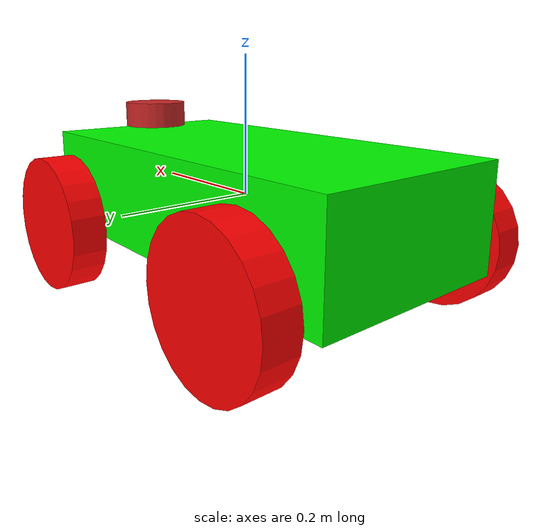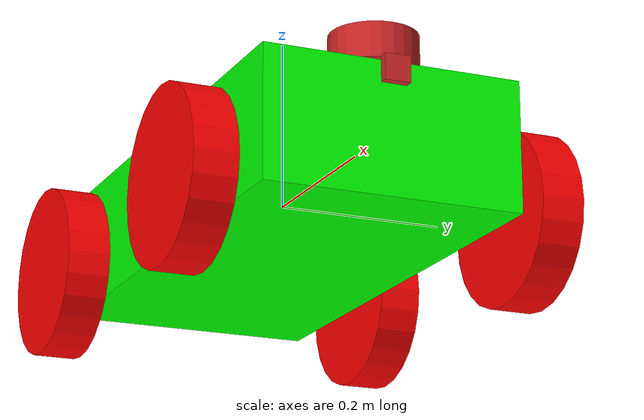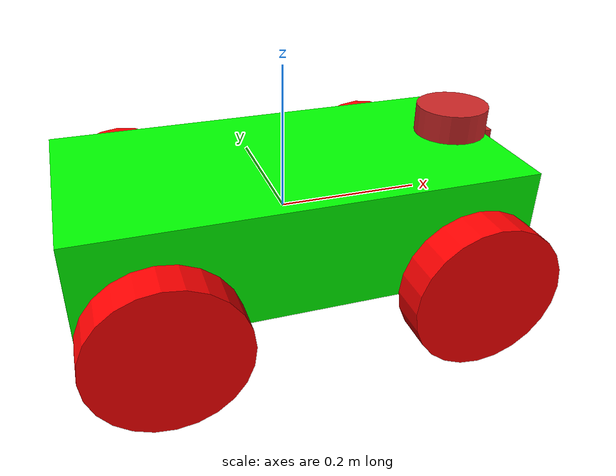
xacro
<?xml version="1.0"?>
<robot xmlns:xacro="http://www.ros.org/wiki/xacro" name="multi_bot_03">

    <!-- xacro:arg name="robot_name" default="robot"/ -->
    <xacro:arg name="namespace" default=""/>

    <xacro:arg name="robot_material_name" default="Green"/>
    <xacro:arg name="robot_material_color_rgb" default="0 1 0 1"/>

    <xacro:include filename="$(find multi_bot_03)/description/xacro/inertial_macros.xacro" />
    <xacro:include filename="$(find multi_bot_03)/description/xacro/lidar.xacro" />
    <xacro:include filename="$(find multi_bot_03)/description/xacro/camera.xacro" />
    <xacro:include filename="$(find multi_bot_03)/description/xacro/imu_sensor.xacro" />

    <!-- xacro:include filename="$(find multi_bot_03)/description/xacro/depth_camera.xacro" / -->

    <xacro:include filename="$(find multi_bot_03)/description/xacro/gazebo_control.xacro" />
    <xacro:include filename="$(find multi_bot_03)/description/xacro/robot_core.xacro" />
</robot>

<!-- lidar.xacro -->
<robot xmlns:xacro="http://www.ros.org/wiki/xacro" >

    <joint name="$(arg namespace)/laser_joint" type="fixed">
        <parent link="$(arg namespace)/base_link"/>
        <child link="$(arg namespace)/lidar_link"/>
        <origin xyz="0.25 0 0.1" rpy="0 0 0"/>
    </joint>

    <link name="$(arg namespace)/lidar_link">
        <visual>
            <geometry>
                <cylinder radius="0.05" length="0.04"/>
            </geometry>
            <material name="red"/>
        </visual>
        <collision>
            <geometry>
                <cylinder radius="0.05" length="0.04"/>
            </geometry>
        </collision>
        <xacro:inertial_cylinder mass="0.1" length="0.04" radius="0.05">
            <origin xyz="0 0 0" rpy="0 0 0"/>
        </xacro:inertial_cylinder>
    </link>
    <gazebo reference="$(arg namespace)/lidar_link">
        <material>Gazebo/Red</material>
        <sensor name="lidar" type="ray">
            <pose> 0 0 0 0 0 0 </pose>
            <always_on>true</always_on>
            <visualize>true</visualize>
            <update_rate>10</update_rate>
            <ray>
                <scan>
                    <horizontal>
                        <samples>360</samples>
                        <min_angle>-3.14</min_angle>
                        <max_angle>3.14</max_angle>
                    </horizontal>
                </scan>
                <range>
                    <min>0.5</min>
                    <max>12</max>
                    <resolution>0.015000</resolution>
                </range>
                <noise>
                    <type>gaussian</type>
                    <mean>0.0</mean>
                    <stddev>0.01</stddev>
                </noise>
            </ray>
            <plugin name="scan" filename="libgazebo_ros_ray_sensor.so">
                <ros>
                    <!-- No remap as name is already "scan", plus I added extra space between dashes -->
                    <remapping>~/out:=$(arg namespace)/scan</remapping>
                    <namespace>$(arg namespace)/lidar</namespace>
                </ros>
                <output_type>sensor_msgs/LaserScan</output_type>
                <frame_name>lidar_link</frame_name>
            </plugin>
        </sensor>
    </gazebo>
</robot>

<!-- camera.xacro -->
<robot xmlns:xacro="http://www.ros.org/wiki/xacro" >

    <joint name="$(arg namespace)/camera_joint" type="fixed">
        <parent link="$(arg namespace)/base_link"/>
        <child link="$(arg namespace)/camera_link"/>
        <origin xyz="0.305 0 0.065" rpy="0 0 0"/>
    </joint>

    <link name="$(arg namespace)/camera_link">
        <visual>
            <geometry>
                <box size="0.010 0.03 0.03"/>
            </geometry>
            <material name="red"/>
        </visual>
    </link>

    <joint name="$(arg namespace)/camera_optical_joint" type="fixed">
        <origin xyz="0 0 0" rpy="${-pi/2} 0 ${-pi/2}" />
        <parent link="$(arg namespace)/camera_link" />
        <child link="$(arg namespace)/camera_link_optical" />
    </joint>

    <link name="$(arg namespace)/camera_link_optical"></link>

    <gazebo reference="$(arg namespace)/camera_link">
        <material>Gazebo/Red</material>
        <sensor name="camera" type="camera">
            <pose> 0 0 0 0 0 0 </pose>
            <visualize>true</visualize>
            <update_rate>10</update_rate>
            <camera>
                <horizontal_fov>1.089</horizontal_fov>
                <image>
                    <format>R8G8B8</format>
                    <width>640</width>
                    <height>480</height>
                </image>
                <clip>
                    <near>0.05</near>
                    <far>8.0</far>
                </clip>
            </camera>
            <plugin name="camera_controller" filename="libgazebo_ros_camera.so">
                <ros>
                    <namespace>$(arg namespace)/camera</namespace>
                    <qos>
                        <topic name="$(arg namespace)/camera/image_raw">
                            <publisher>
                                <reliability>reliable</reliability>
                            </publisher>
                        </topic>
                    </qos>
                </ros>
                <frame_name>camera_link_optical</frame_name>
            </plugin>
        </sensor>
    </gazebo>
</robot>

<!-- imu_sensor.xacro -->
<robot xmlns:xacro="http://www.ros.org/wiki/xacro">

<link name="$(arg namespace)/imu_link">

  <visual>
    <geometry>
      <box size="0.1 0.1 0.1"/>
    </geometry>
  </visual>

  <collision>
    <geometry>
      <box size="0.1 0.1 0.1"/>
    </geometry>
  </collision>

  <xacro:inertial_box mass="0.0" x="0.0" y="0.0" z="0.0">
    <origin xyz="0 0 0" rpy="0 0 0"/>
  </xacro:inertial_box>

</link>

<joint name="$(arg namespace)/imu_joint" type="fixed">
  <parent link="$(arg namespace)/base_link"/>
  <child link="$(arg namespace)/imu_link"/>
  <origin xyz="0. 0. 0.02"  rpy="0 0 0"/>
</joint>

  <gazebo reference="$(arg namespace)/imu_link">
    <sensor name="imu_sensor" type="imu">
      <plugin filename="libgazebo_ros_imu_sensor.so" name="imu_plugin">
        <ros>
          <namespace>$(arg namespace)/imu</namespace>
          <remapping>~/out:=$(arg namespace)/imu</remapping>
        </ros>
        <initial_orientation_as_reference>false</initial_orientation_as_reference>
        <frame_name>imu_link</frame_name>
      </plugin>
      <always_on>true</always_on>
      <update_rate>100</update_rate>
      <visualize>true</visualize>
     <imu>
     	<angular_velocity>
     	  <x>
     	    <noise type="gaussian">
              <mean>0.0</mean>
              <stddev>2e-4</stddev>
              <bias_mean>0.0000075</bias_mean>
              <bias_stddev>0.0000008</bias_stddev>
            </noise>
          </x>
          <y>
            <noise type="gaussian">
              <mean>0.0</mean>
              <stddev>2e-4</stddev>
              <bias_mean>0.0000075</bias_mean>
              <bias_stddev>0.0000008</bias_stddev>
            </noise>
          </y>
          <z>
            <noise type="gaussian">
              <mean>0.0</mean>
              <stddev>2e-4</stddev>
              <bias_mean>0.0000075</bias_mean>
              <bias_stddev>0.0000008</bias_stddev>
            </noise>
          </z>
        </angular_velocity>
        <linear_acceleration>
          <x>
            <noise type="gaussian">
              <mean>0.0</mean>
              <stddev>1.7e-2</stddev>
              <bias_mean>0.1</bias_mean>
              <bias_stddev>0.001</bias_stddev>
            </noise>
          </x>
          <y>
            <noise type="gaussian">
              <mean>0.0</mean>
              <stddev>1.7e-2</stddev>
              <bias_mean>0.1</bias_mean>
              <bias_stddev>0.001</bias_stddev>
            </noise>
          </y>
          <z>
            <noise type="gaussian">
              <mean>0.0</mean>
              <stddev>1.7e-2</stddev>
              <bias_mean>0.1</bias_mean>
              <bias_stddev>0.001</bias_stddev>
            </noise>
          </z>
        </linear_acceleration>
      </imu>
    </sensor>
  </gazebo>

</robot>

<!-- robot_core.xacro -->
<robot xmlns:xacro="http://www.ros.org/wiki/xacro">

    <xacro:include filename="colors.xacro" />

    <xacro:property name="base_width" value="0.3"/>
    <xacro:property name="base_length" value="0.6"/>
    <xacro:property name="base_height" value="0.15"/>

    <xacro:property name="wheel_radius" value="0.1" />
    <xacro:property name="wheel_length" value="0.05" />
    <xacro:property name="wheel_color_name" value="wheel_red" />
    <xacro:property name="wheel_color_rgb" value="1 0 0 1" />
    <xacro:property name="wheel_zoff" value="0.05"/>

    <xacro:macro name="box_link" params="name size color color_rgb mass mass_x mass_y mass_z" >
        <link name="$(arg namespace)/${name}">
            <visual>
                <geometry>
                    <box size="${size}"/>
                    <!-- origin xyz="0.0 0.0"/ -->
                </geometry>

                <material name="${color}">
                    <color rgba="${color_rgb}"/>
                </material>
            </visual>
            <collision>
                <origin xyz="${mass_x/2} ${mass_y/2} ${mass_z/2}" rpy="0 0 0"/>
                <geometry>
                    <box size="${size}"/>
                </geometry>
            </collision>
            <xacro:inertial_box mass="${mass}" x="${mass_x}" y="${mass_y}" z="${mass_z}">
                <origin xyz="${mass_x} ${mass_y} ${mass_z}" rpy="0 0 0"/>
            </xacro:inertial_box>
        </link>
    </xacro:macro>

    <xacro:macro name="wheel" params="name mass">
        <link name="$(arg namespace)/${name}">
            <visual>
                <geometry>
                    <cylinder radius="${wheel_radius}" length="${wheel_length}" />
                </geometry>
                <material name="${wheel_color_name}">
                    <color rgba="${wheel_color_rgb}"/>
                </material>
            </visual>
            <collision>
                <geometry>
                    <cylinder length="${wheel_length}" radius="${wheel_radius}" />/>
                </geometry>
                <material name="blue"/>
            </collision>
            <xacro:inertial_cylinder mass="${mass}" length="${wheel_length}" radius="${wheel_radius}">
                <origin xyz="0 0 0" rpy="0 0 0"/>
            </xacro:inertial_cylinder>
        </link>
    </xacro:macro>

    <xacro:macro name="wheel_joint" params="name parent child xyz ">
        <joint name="$(arg namespace)/${name}" type="continuous">
            <parent link="$(arg namespace)/${parent}" />
            <child link="$(arg namespace)/${child}" />
            <origin xyz="${xyz}" rpy="${-pi/2} 0 0"/>
            <axis rpy="0 0 0" xyz="0 0 1"/>
        </joint>
    </xacro:macro>

    <!-- Robot Description -->

    <!-- link name="base_footprint"/ -->

    <xacro:box_link name="base_link" size="${base_length} ${base_width} ${base_height}"
        color="$(arg robot_material_name)" color_rgb="$(arg robot_material_color_rgb)"
        mass="0.5" mass_x="0.3" mass_y="0.15" mass_z="0.05"/>

   <!-- Robot Footprint -->
   <xacro:box_link name="base_footprint" size="0.0 0.0 0.0" color="green" color_rgb="0 1 0 1"
        mass="0.0" mass_x="0.0" mass_y="0.0" mass_z="0.0"/>

  <joint name="$(arg namespace)/base_joint" type="fixed">
    <parent link="$(arg namespace)/base_link"/>
    <child link="$(arg namespace)/base_footprint"/>
    <origin xyz="0.0 0.0 ${-(wheel_radius+wheel_zoff)}" rpy="0 0 0"/>
  </joint>

    <xacro:wheel name="right_wheel_frontside" mass="0.1" />
    <xacro:wheel_joint name="base_link_right_wheel_frontside" parent="base_link"
        child="right_wheel_frontside" xyz="0.2 -0.2 ${-wheel_zoff}" />

    <xacro:wheel name="right_wheel_backside" mass="0.1" />
    <xacro:wheel_joint name="base_link_right_wheel_backside" parent="base_link"
        child="right_wheel_backside" xyz="-0.2 -0.2 ${-wheel_zoff}" />

    <xacro:wheel name="left_wheel_frontside" mass="0.1" />
    <xacro:wheel_joint name="base_link_left_wheel_frontside" parent="base_link"
        child="left_wheel_frontside" xyz="0.2 0.2 ${-wheel_zoff}" />

    <xacro:wheel name="left_wheel_backside" mass="0.1" />
    <xacro:wheel_joint name="base_link_left_wheel_backside" parent="base_link"
        child="left_wheel_backside" xyz="-0.2 0.2 ${-wheel_zoff}" />

    <!-- Gazebo Colors -->
    <gazebo reference="$(arg namespace)/base_link">
        <material>Gazebo/$(arg robot_material_name)</material>
    </gazebo>
    <gazebo reference="$(arg namespace)/right_wheel_frontside">
        <material>Gazebo/Red</material>
    </gazebo>
    <gazebo reference="$(arg namespace)/right_wheel_backside">
        <material>Gazebo/Red</material>
    </gazebo>
    <gazebo reference="$(arg namespace)/left_wheel_frontside">
        <material>Gazebo/Red</material>
    </gazebo>
    <gazebo reference="$(arg namespace)/left_wheel_backside">
        <material>Gazebo/Red</material>
    </gazebo>

</robot>
